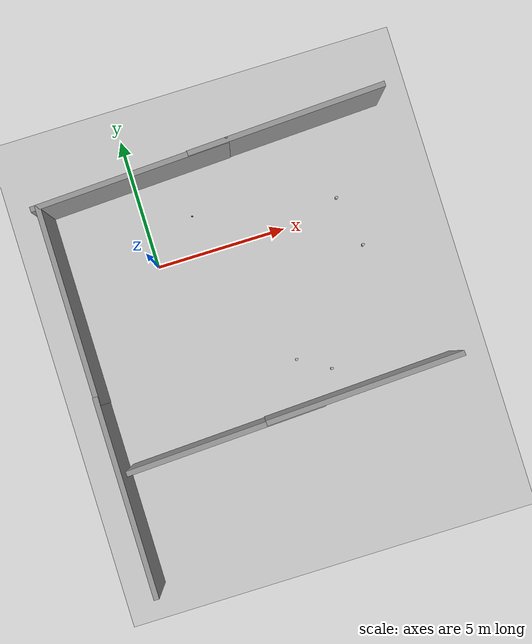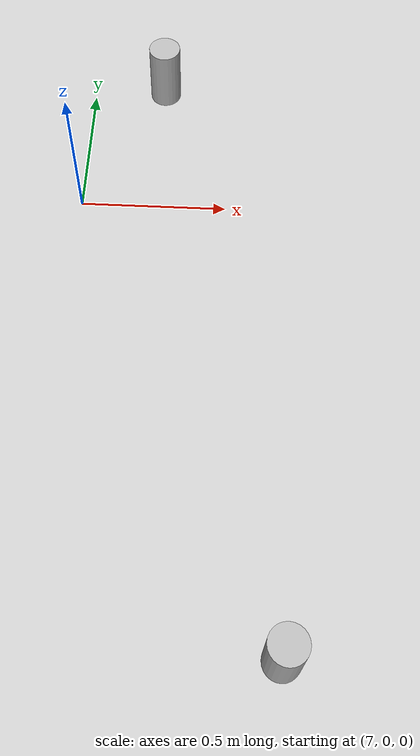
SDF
<sdf version="1.6">
 <world name="default">
  <light name="sun" type="directional">
   <pose>0 0 10 0 -0 0</pose>
   <diffuse>0.8 0.8 0.8 1</diffuse>
   <specular>0.1 0.1 0.1 1</specular>
   <attenuation>
    <range>1000</range>
    <constant>0.9</constant>
    <linear>0.01</linear>
    <quadratic>0.001</quadratic>
   </attenuation>
   <direction>-0.5 0.5 -1</direction>
   <spot><inner_angle>0</inner_angle><outer_angle>0</outer_angle><falloff>0</falloff></spot>
  </light>
  <model name="ground_plane">
   <static>1</static>
   <link name="link">
    <collision name="collision">
     <geometry><plane><normal>0 0 1</normal><size>100 100</size></plane></geometry>
     <surface><friction><ode><mu>100</mu><mu2>50</mu2></ode></friction></surface>
    </collision>
    <visual name="visual">
     <cast_shadows>0</cast_shadows>
     <geometry><plane><normal>0 0 1</normal><size>100 100</size></plane></geometry>
     <material>
      <script><uri>file://media/materials/scripts/gazebo.material</uri><name>Gazebo/Grey</name></script>
     </material>
    </visual>
   </link>
  </model>
  <gravity>0 0 -9.8</gravity>
  <magnetic_field>6e-06 2.3e-05 -4.2e-05</magnetic_field>
  <atmosphere type="adiabatic"/>
  <physics name="default_physics" default="0" type="ode">
   <max_step_size>0.001</max_step_size>
   <real_time_factor>1</real_time_factor>
   <real_time_update_rate>1000</real_time_update_rate>
  </physics>
  <scene><ambient>0.4 0.4 0.4 1</ambient><background>0.7 0.7 0.7 1</background><shadows>1</shadows></scene>
  <spherical_coordinates>
   <surface_model>EARTH_WGS84</surface_model>
   <latitude_deg>0</latitude_deg>
   <longitude_deg>0</longitude_deg>
   <elevation>0</elevation>
   <heading_deg>0</heading_deg>
  </spherical_coordinates>
  <model name="grey_wall">
   <static>1</static>
   <link name="link">
    <pose>0 0 1.4 0 -0 0</pose>
    <collision name="collision"><geometry><box><size>7.5 0.2 2.8</size></box></geometry></collision>
    <visual name="visual">
     <cast_shadows>0</cast_shadows>
     <geometry><box><size>7.5 0.2 2.8</size></box></geometry>
     <material>
      <script>
       <uri>model://grey_wall/materials/scripts</uri>
       <uri>model://grey_wall/materials/textures</uri>
       <name>vrc/grey_wall</name>
      </script>
     </material>
    </visual>
   </link>
   <pose>0.10672 3.16127 0 0 -0 0.042952</pose>
  </model>
  <model name="grey_wall_clone">
   <static>1</static>
   <link name="link">
    <pose>0 0 1.4 0 -0 0</pose>
    <collision name="collision"><geometry><box><size>7.5 0.2 2.8</size></box></geometry></collision>
    <visual name="visual">
     <cast_shadows>0</cast_shadows>
     <geometry><box><size>7.5 0.2 2.8</size></box></geometry>
     <material>
      <script>
       <uri>model://grey_wall/materials/scripts</uri>
       <uri>model://grey_wall/materials/textures</uri>
       <name>vrc/grey_wall</name>
      </script>
     </material>
    </visual>
   </link>
   <pose>-3.36551 -0.65636 0 0 -0 1.57078</pose>
  </model>
  <model name="grey_wall_clone_0">
   <static>1</static>
   <link name="link">
    <pose>0 0 1.4 0 -0 0</pose>
    <collision name="collision"><geometry><box><size>7.5 0.2 2.8</size></box></geometry></collision>
    <visual name="visual">
     <cast_shadows>0</cast_shadows>
     <geometry><box><size>7.5 0.2 2.8</size></box></geometry>
     <material>
      <script>
       <uri>model://grey_wall/materials/scripts</uri>
       <uri>model://grey_wall/materials/textures</uri>
       <name>vrc/grey_wall</name>
      </script>
     </material>
    </visual>
   </link>
   <pose>0.633233 -6.84359 0 0 -0 0.042952</pose>
  </model>
  <model name="grey_wall_clone_0_clone">
   <static>1</static>
   <link name="link">
    <pose>0 0 1.4 0 -0 0</pose>
    <collision name="collision"><geometry><box><size>7.5 0.2 2.8</size></box></geometry></collision>
    <visual name="visual">
     <cast_shadows>0</cast_shadows>
     <geometry><box><size>7.5 0.2 2.8</size></box></geometry>
     <material>
      <script>
       <uri>model://grey_wall/materials/scripts</uri>
       <uri>model://grey_wall/materials/textures</uri>
       <name>vrc/grey_wall</name>
      </script>
     </material>
    </visual>
   </link>
   <pose>5.91519 -6.58807 0 0 -0 0.042952</pose>
  </model>
  <model name="grey_wall_clone_0_clone_0">
   <static>1</static>
   <link name="link">
    <pose>0 0 1.4 0 -0 0</pose>
    <collision name="collision"><geometry><box><size>7.5 0.2 2.8</size></box></geometry></collision>
    <visual name="visual">
     <cast_shadows>0</cast_shadows>
     <geometry><box><size>7.5 0.2 2.8</size></box></geometry>
     <material>
      <script>
       <uri>model://grey_wall/materials/scripts</uri>
       <uri>model://grey_wall/materials/textures</uri>
       <name>vrc/grey_wall</name>
      </script>
     </material>
    </visual>
   </link>
   <pose>6.05322 3.44004 0 0 -0 0.042952</pose>
  </model>
  <model name="grey_wall_clone_clone">
   <static>1</static>
   <link name="link">
    <pose>0 0 1.4 0 -0 0</pose>
    <collision name="collision"><geometry><box><size>7.5 0.2 2.8</size></box></geometry></collision>
    <visual name="visual">
     <cast_shadows>0</cast_shadows>
     <geometry><box><size>7.5 0.2 2.8</size></box></geometry>
     <material>
      <script>
       <uri>model://grey_wall/materials/scripts</uri>
       <uri>model://grey_wall/materials/textures</uri>
       <name>vrc/grey_wall</name>
      </script>
     </material>
    </visual>
   </link>
   <pose>-3.38362 -7.81171 0 0 -0 1.57078</pose>
  </model>
  <model name="beer">
   <link name="link">
    <pose>0 0 0.115 0 -0 0</pose>
    <inertial>
     <mass>0.39</mass>
     <inertia><ixx>0.00058</ixx><ixy>0</ixy><ixz>0</ixz><iyy>0.00058</iyy><iyz>0</iyz><izz>0.00019</izz></inertia>
    </inertial>
    <collision name="collision">
     <geometry><cylinder><radius>0.055</radius><length>0.23</length></cylinder></geometry>
    </collision>
    <visual name="visual">
     <geometry><cylinder><radius>0.055</radius><length>0.23</length></cylinder></geometry>
     <material>
      <script>
       <uri>model://beer/materials/scripts</uri>
       <uri>model://beer/materials/textures</uri>
       <name>Beer/Diffuse</name>
      </script>
     </material>
    </visual>
   </link>
   <pose>7.70085 -1.48879 -3e-06 1e-06 -0 -6.5e-05</pose>
  </model>
  <model name="RoboCup SPL Ball">
   <static>0</static>
   <link name="ball">
    <inertial>
     <mass>0.0056</mass>
     <inertia>
      <ixx>2.37e-06</ixx>
      <iyy>2.37e-06</iyy>
      <izz>2.37e-06</izz>
      <ixy>0</ixy>
      <ixz>0</ixz>
      <iyz>0</iyz>
     </inertia>
    </inertial>
    <collision name="collision"><geometry><sphere><radius>0.0325</radius></sphere></geometry></collision>
    <visual name="visual">
     <geometry><sphere><radius>0.0325</radius></sphere></geometry>
     <material>
      <script><uri>file://media/materials/scripts/gazebo.material</uri><name>Gazebo/RedBright</name></script>
     </material>
    </visual>
   </link>
   <pose>1.78406 1.48154 0.0325 0 -0 0</pose>
  </model>
  <model name="beer_0">
   <link name="link">
    <pose>0 0 0.115 0 -0 0</pose>
    <inertial>
     <mass>0.39</mass>
     <inertia><ixx>0.00058</ixx><ixy>0</ixy><ixz>0</ixz><iyy>0.00058</iyy><iyz>0</iyz><izz>0.00019</izz></inertia>
    </inertial>
    <collision name="collision">
     <geometry><cylinder><radius>0.055</radius><length>0.23</length></cylinder></geometry>
    </collision>
    <visual name="visual">
     <geometry><cylinder><radius>0.055</radius><length>0.23</length></cylinder></geometry>
     <material>
      <script>
       <uri>model://beer/materials/scripts</uri>
       <uri>model://beer/materials/textures</uri>
       <name>Beer/Diffuse</name>
      </script>
     </material>
    </visual>
   </link>
   <pose>7.26022 0.531497 -7e-06 -0 -0 -5.8e-05</pose>
  </model>
  <model name="beer_clone">
   <link name="link">
    <pose>0 0 0.115 0 -0 0</pose>
    <inertial>
     <mass>0.39</mass>
     <inertia><ixx>0.00058</ixx><ixy>0</ixy><ixz>0</ixz><iyy>0.00058</iyy><iyz>0</iyz><izz>0.00019</izz></inertia>
    </inertial>
    <collision name="collision">
     <geometry><cylinder><radius>0.055</radius><length>0.23</length></cylinder></geometry>
    </collision>
    <visual name="visual">
     <geometry><cylinder><radius>0.055</radius><length>0.23</length></cylinder></geometry>
     <material>
      <script>
       <uri>model://beer/materials/scripts</uri>
       <uri>model://beer/materials/textures</uri>
       <name>Beer/Diffuse</name>
      </script>
     </material>
    </visual>
   </link>
   <pose>3.98999 -4.92328 -3e-06 1e-06 -0 -7e-05</pose>
  </model>
  <model name="beer_clone_0">
   <link name="link">
    <pose>0 0 0.115 0 -0 0</pose>
    <inertial>
     <mass>0.39</mass>
     <inertia><ixx>0.00058</ixx><ixy>0</ixy><ixz>0</ixz><iyy>0.00058</iyy><iyz>0</iyz><izz>0.00019</izz></inertia>
    </inertial>
    <collision name="collision">
     <geometry><cylinder><radius>0.055</radius><length>0.23</length></cylinder></geometry>
    </collision>
    <visual name="visual">
     <geometry><cylinder><radius>0.055</radius><length>0.23</length></cylinder></geometry>
     <material>
      <script>
       <uri>model://beer/materials/scripts</uri>
       <uri>model://beer/materials/textures</uri>
       <name>Beer/Diffuse</name>
      </script>
     </material>
    </visual>
   </link>
   <pose>5.1728 -5.64622 -3e-06 1e-06 -0 -6.6e-05</pose>
  </model>
 </world>
</sdf>
